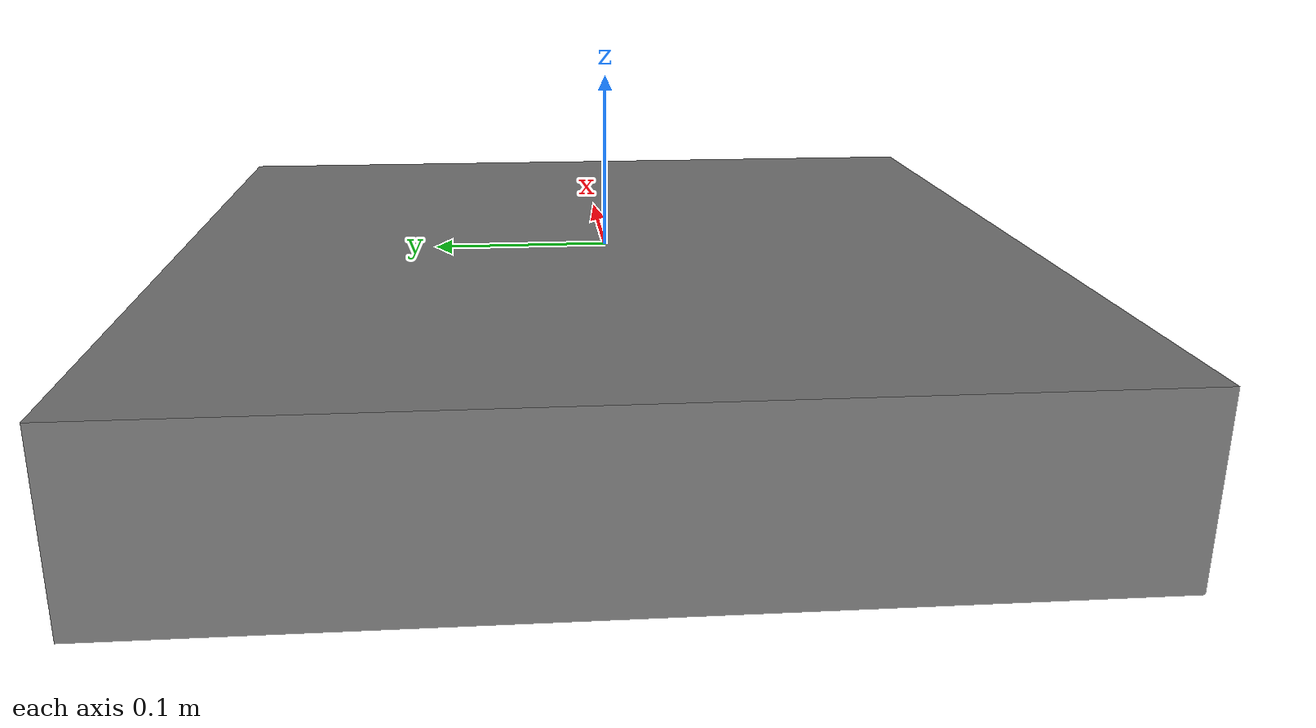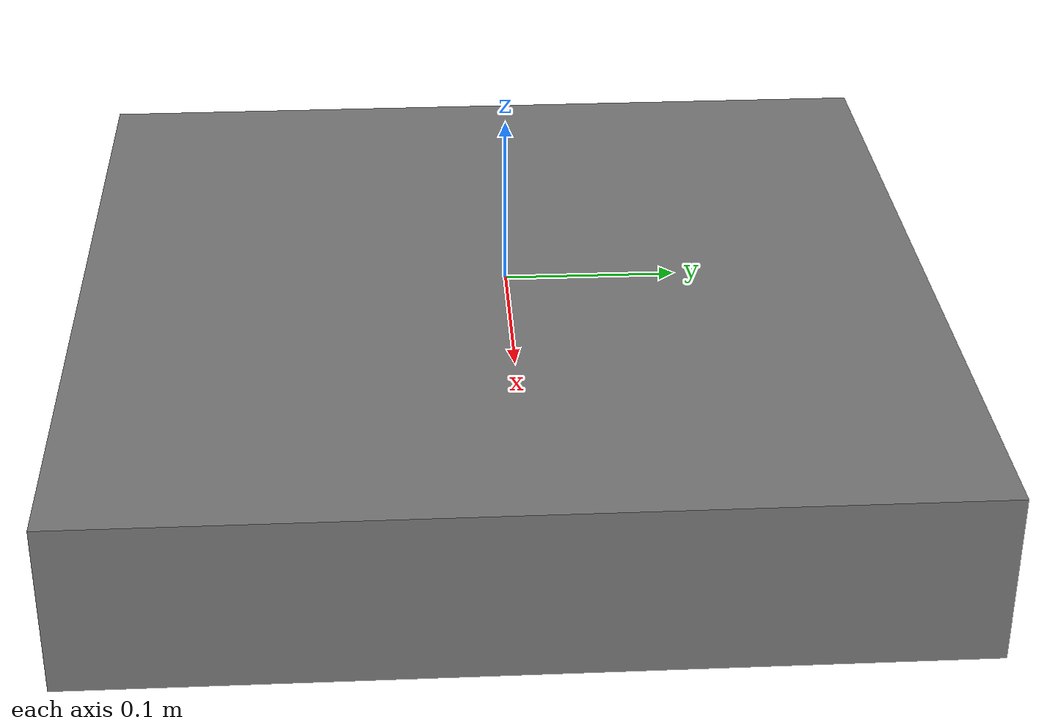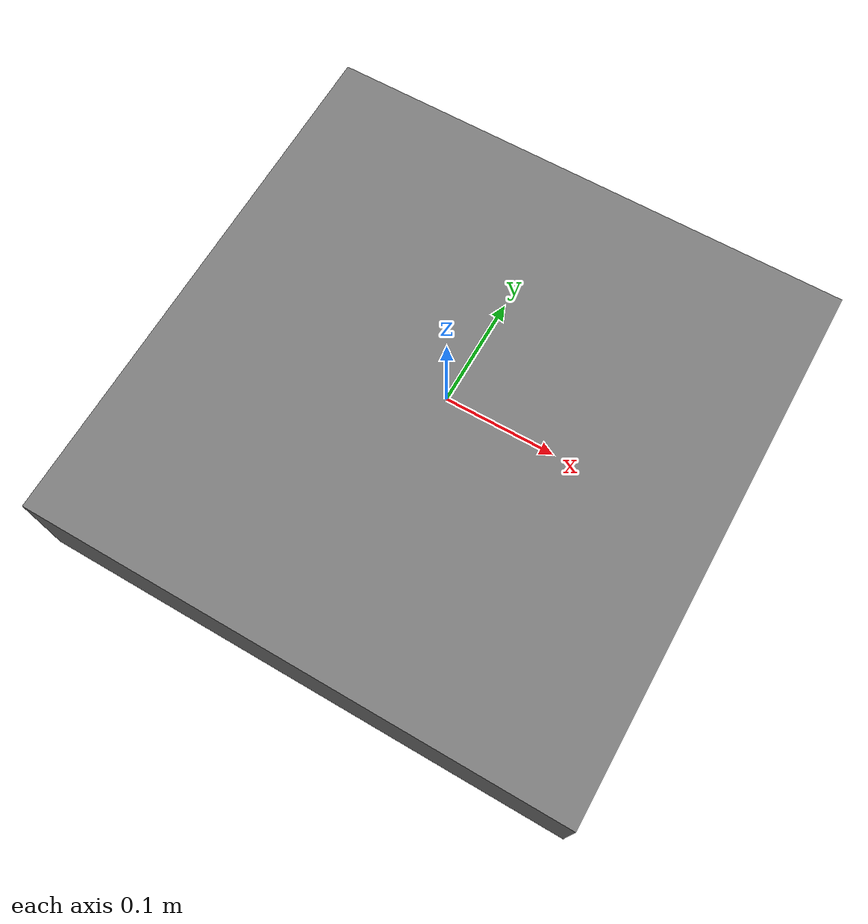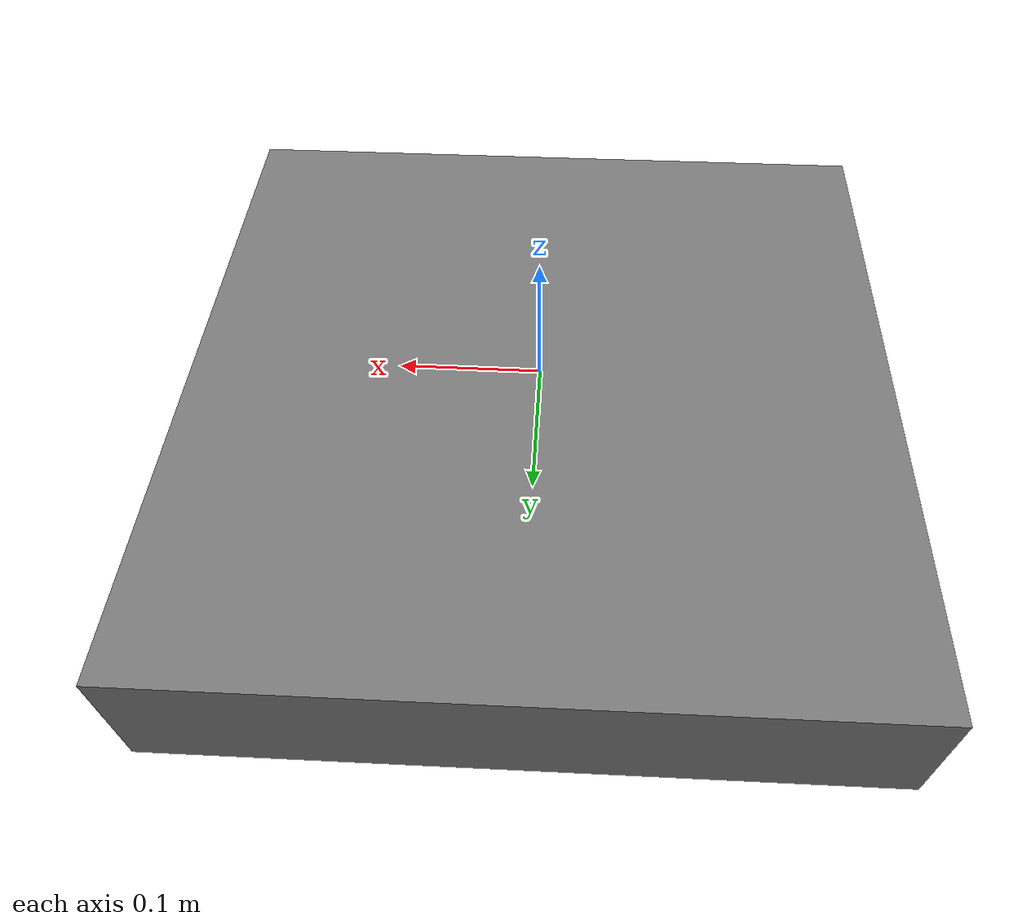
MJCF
<mujoco model="g1_flat_floor_entity">
  <option integrator="implicitfast" timestep="0.006666666666666667"/>
  <worldbody>
    <body name="floor">
      <!-- Task-local finite support avoids inter-env broadphase overlap while retaining
           stable box-contact semantics that the zero-size-plane import lacked. -->
      <geom name="floor" type="box" size="0.25 0.25 0.05" pos="0 0 -0.05" mass="1"/>
    </body>
  </worldbody>
</mujoco>
